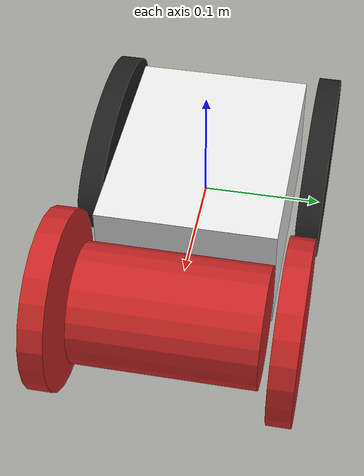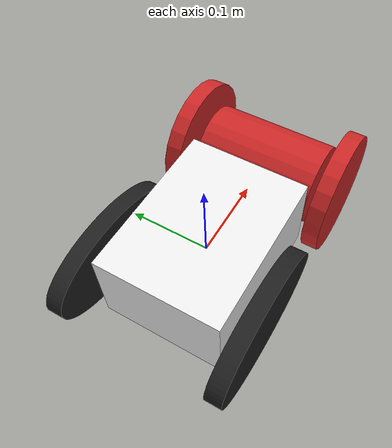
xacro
<?xml version="1.0"?>
<robot name="carrier" xmlns:xacro="http://www.ros.org/wiki/xacro">

<!-- Included URDF/XACRO Files -->
<xacro:include filename="$(find carrier_robot)/urdf/materials.urdf.xacro" />

<!-- PROPERTY LIST -->
<!--All units in m-kg-s-radians unit system -->
<property name="M_PI" value="3.1415926535897931" />

<!--Inertial macros for the box and cylinder. Units are kg*m^2-->
<macro name="box_inertia" params="m x y z">
	<inertia  ixx="${m*(y*y+z*z)/12}" ixy = "0" ixz = "0" iyy="${m*(x*x+z*z)/12}" iyz = "0" izz="${m*(x*x+z*z)/12}" />
</macro>
<macro name="cylinder_inertia" params="m r l">
	<inertia  ixx="${m*(r*r/4+l*l/12)}" ixy = "0" ixz = "0" iyy="${m*(r*r/4+l*l/12)}" iyz = "0" izz="${m*r*r/2}" />
</macro>
<macro name="ellipse_inertia" params="m short long l">
	<inertia  ixx="${m*(short*short)/4}" ixy = "0" ixz = "0" iyy="${m*(short*short+long*long)/4}" iyz = "0" izz="${m*(long*long)/4}" />
</macro>

<!-- Main Body-base -->
<property name="base_x_size" value="0.20" />
<property name="base_y_size" value="0.15" />
<property name="base_z_size" value="0.10" />
<property name="base_mass" value="3.00" />
<!-- child robot base -->
<property name="child_body_r" value="0.05" />
<property name="child_body_l" value="0.15" />
<property name="child_body_mass" value="1.30" />
<!-- carrier robot wheel -->
<property name="carrier_wheel_long" value="0.1" />
<property name="carrier_wheel_short" value="0.05" />
<property name="carrier_wheel_l" value="0.02" />
<property name="carrier_wheel_mass" value="0.1" />
<!-- child robot wheel -->
<property name="child_wheel_r" value="0.075" />
<property name="child_wheel_l" value="0.02" />
<property name="child_wheel_mass" value="0.1" />

<!-- Body of carrier robot-->
<link name="base_link">
	<inertial>
		<mass value="${base_mass}" />
		<origin xyz="0 0 0" />
		<box_inertia m="${base_mass}" x="${base_x_size}" y="${base_y_size}" z="${base_z_size}"/>
	</inertial>
	<visual>
		<origin xyz="0 0 0" rpy="0 0 0" />
		<geometry>
			<box size="${base_x_size} ${base_y_size} ${base_z_size}"/>
		</geometry>
		<material name="White" />
	</visual>
	<collision>
		<origin xyz="0 0 0" rpy="0 0 0 " />
		<geometry>
			<box size="${base_x_size} ${base_y_size} ${base_z_size}"/>
		</geometry>
	</collision>
</link>
<gazebo reference="base_link">
	<material>Gazebo/White</material>
	<turnGravityOff>false</turnGravityOff>
	<mu1>0.2</mu1>
	<mu2>0.2</mu2>
</gazebo>

<!-- ==========Carrier's wheels definition========== -->
<!-- Right side wheel of carrier robot -->
<link name="carrier_robot_wheel_R_link">
	<inertial>
		<mass value="${carrier_wheel_mass}" />
		<origin xyz="0 0 0" />
		<ellipse_inertia m="${carrier_wheel_mass}" short="${carrier_wheel_short}" long="${carrier_wheel_long}" l="${carrier_wheel_l}" />
	</inertial>
	<visual>
		<origin xyz="0 0 0" rpy="0 0 0" />
		<geometry>
			<mesh filename="package://carrier_robot/stl/ellipse_sample.STL" />
		</geometry>
		<material name="Black" />
	</visual>
	<collision>
		<origin xyz="0 0 0" rpy="0 0 0 " />
		<geometry>
			<mesh filename="package://carrier_robot/stl/ellipse_sample.STL" />
		</geometry>
	</collision>
</link>
<gazebo reference="carrier_robot_wheel_R_link">
	<material>Gazebo/Black</material>
	<turnGravityOff>false</turnGravityOff>
	<mu1>0.5</mu1>
   <mu2>0.5</mu2>
</gazebo>

<!-- Joint between base_link and carrier_robot_wheel_R_link -->
<joint name="carrier_base_wheel_R_joint" type="continuous">
	<parent link="base_link" />
	<child link="carrier_robot_wheel_R_link"/>
	<origin rpy="0 0 0" xyz="${(-1)*(base_x_size/2-0.05)} ${(-1)*(base_y_size/2+0.02+carrier_wheel_l/2)} 0" />
	<axis xyz="0 1 0" />
</joint>

<!-- Transmission of carrier_base_wheel_R_joint -->
<transmission name="carrier_base_wheel_R_joint_trans">
	<type>transmission_interface/SimpleTransmission</type>
	<joint name="carrier_base_wheel_R_joint">
		<hardwareInterface>hardware_interface/EffortJointInterface</hardwareInterface>
	</joint>
	<actuator name="carrier_base_wheel_R_joint_motor">
		<hardwareInterface>hardware_interface/EffortJointInterface</hardwareInterface>
		<mechanicalReduction>1</mechanicalReduction>
	</actuator>
</transmission>

<!-- Left side wheel of carrier robot -->
<link name="carrier_robot_wheel_L_link">
	<inertial>
		<mass value="${carrier_wheel_mass}" />
		<origin xyz="0 0 0" />
		<ellipse_inertia m="${carrier_wheel_mass}" short="${carrier_wheel_short}" long="${carrier_wheel_long}" l="${carrier_wheel_l}" />
	</inertial>
	<visual>
		<origin xyz="0 0 0" rpy="0 0 0" />
		<geometry>
			<mesh filename="package://carrier_robot/stl/ellipse_sample.STL" />
		</geometry>
		<material name="Black" />
	</visual>
	<collision>
		<origin xyz="0 0 0" rpy="0 0 0 " />
		<geometry>
			<mesh filename="package://carrier_robot/stl/ellipse_sample.STL" />
		</geometry>
	</collision>
</link>
<gazebo reference="carrier_robot_wheel_L_link">
	<material>Gazebo/Black</material>
	<turnGravityOff>false</turnGravityOff>
	<mu1>0.5</mu1>
   <mu2>0.5</mu2>
</gazebo>

<!-- Joint between carrier_robot_wheel_R_link and carrier_robot_wheel_L_link -->
<joint name="carrier_wheel_R-L_joint" type="fixed">
	<parent link="carrier_robot_wheel_R_link" />
	<child link="carrier_robot_wheel_L_link"/>
	<origin rpy="0 0 0" xyz="0 ${base_y_size+0.02+carrier_wheel_l} 0" />
</joint>

<!-- Body of child robot-->
<link name="child_robot_base_link">
	<inertial>
		<mass value="${child_body_mass}" />
		<origin xyz="0 0 0" />
		<cylinder_inertia m="${child_body_mass}" r="${child_body_r}" l="${child_body_l}" />
	</inertial>
	<visual>
		<origin xyz="0 0 0" rpy="0 0 0" />
		<geometry>
			<cylinder radius="${child_body_r}" length="${child_body_l}"/>
		</geometry>
		<material name="Red" />
	</visual>
	<collision>
		<origin xyz="0 0 0" rpy="0 0 0 " />
		<geometry>
			<cylinder radius="${child_body_r}" length="${child_body_l}"/>
		</geometry>
	</collision>
</link>
<gazebo reference="child_robot_base_link">
	<material>Gazebo/Red</material>
	<turnGravityOff>false</turnGravityOff>
	<mu1>0.2</mu1>
   <mu2>0.2</mu2>
</gazebo>

<!-- Joint between base link and child_robot_base_link -->
<joint name="base_child_joint" type="continuous">
	<parent link="base_link" />
	<child link="child_robot_base_link"/>
	<origin rpy="${M_PI/2} 0 0" xyz="${base_x_size/2+child_body_r} 0 0"/>
</joint>

<!-- ==========Child's right side wheel definition========== -->
<!-- Right side wheel of child robot -->
<link name="child_robot_wheel_R_link">
	<inertial>
		<mass value="${child_wheel_mass}" />
		<origin xyz="0 0 0" />
		<cylinder_inertia m="${child_wheel_mass}" r="${child_wheel_r}" l="${child_wheel_l}" />
	</inertial>
	<visual>
		<origin xyz="0 0 0" rpy="0 0 0" />
		<geometry>
			<cylinder radius="${child_wheel_r}" length="${child_wheel_l}"/>
		</geometry>
		<material name="Red" />
	</visual>
	<collision>
		<origin xyz="0 0 0" rpy="0 0 0 " />
		<geometry>
			<cylinder radius="${child_wheel_r}" length="${child_wheel_l}"/>
		</geometry>
	</collision>
</link>
<gazebo reference="child_robot_wheel_R_link">
	<material>Gazebo/Red</material>
	<turnGravityOff>false</turnGravityOff>
	<mu1>0.5</mu1>
   <mu2>0.5</mu2>
</gazebo>

<!-- Joint between child_robot_base_link and child_robot_wheel_R_link -->
<joint name="child_base_wheel_R_joint" type="continuous">
	<parent link="child_robot_base_link" />
	<child link="child_robot_wheel_R_link"/>
	<origin rpy="0 0 ${M_PI/2}" xyz="0 0 ${child_body_l/2+0.01+child_wheel_l/2}"/>
	<axis xyz="0 0 1" />
</joint>

<!-- Transmission of child_base_wheel_R_joint -->
<transmission name="child_base_wheel_R_joint_trans">
	<type>transmission_interface/SimpleTransmission</type>
	<joint name="child_base_wheel_R_joint">
		<hardwareInterface>hardware_interface/EffortJointInterface</hardwareInterface>
	</joint>
	<actuator name="child_base_wheel_R_joint_motor">
		<hardwareInterface>hardware_interface/EffortJointInterface</hardwareInterface>
		<mechanicalReduction>1</mechanicalReduction>
	</actuator>
</transmission>

<!-- ==========Child's left side wheel definition========== -->
<!-- Left side wheel of child robot -->
<link name="child_robot_wheel_L_link">
	<inertial>
		<mass value="${child_wheel_mass}" />
		<origin xyz="0 0 0" />
		<cylinder_inertia m="${child_wheel_mass}" r="${child_wheel_r}" l="${child_wheel_l}" />
	</inertial>
	<visual>
		<origin xyz="0 0 0" rpy="0 0 0" />
		<geometry>
			<cylinder radius="${child_wheel_r}" length="${child_wheel_l}"/>
		</geometry>
		<material name="Red" />
	</visual>
	<collision>
		<origin xyz="0 0 0" rpy="0 0 0 " />
		<geometry>
			<cylinder radius="${child_wheel_r}" length="${child_wheel_l}"/>
		</geometry>
	</collision>
</link>
<gazebo reference="child_robot_wheel_L_link">
	<material>Gazebo/Red</material>
	<turnGravityOff>false</turnGravityOff>
	<mu1>0.5</mu1>
   <mu2>0.5</mu2>
</gazebo>

<!-- Joint between child_robot_base_link and child_robot_wheel_L_link -->
<joint name="child_base_wheel_L_joint" type="continuous">
	<parent link="child_robot_base_link" />
	<child link="child_robot_wheel_L_link"/>
	<origin rpy="0 0 ${M_PI/2}" xyz="0 0 ${(-1)*(child_body_l/2+0.01+child_wheel_l/2)}"/>
	<axis xyz="0 0 1" />
</joint>

<link name="base_footprint"/>

<!-- Transmission of child_base_wheel_L_joint -->
<transmission name="child_base_wheel_L_joint_trans">
	<type>transmission_interface/SimpleTransmission</type>
	<joint name="child_base_wheel_L_joint">
		<hardwareInterface>hardware_interface/EffortJointInterface</hardwareInterface>
	</joint>
	<actuator name="child_base_wheel_L_joint_motor">
		<hardwareInterface>hardware_interface/EffortJointInterface</hardwareInterface>
		<mechanicalReduction>1</mechanicalReduction>
	</actuator>
</transmission>

<!-- Base footprint -->
<gazebo reference="base_footprint">
	<turnGravityOff>false</turnGravityOff>
</gazebo>

<joint name="base_link_joint" type="fixed">
	<origin xyz="0 0 0" rpy="0 0 0" />
	<parent link="base_footprint"/>
	<child link="base_link" />
</joint>

<gazebo>
	<plugin name="gazebo_ros_control" filename="libgazebo_ros_control.so">
		<robotNamespace>carrier</robotNamespace>
	</plugin>
</gazebo>

</robot>
